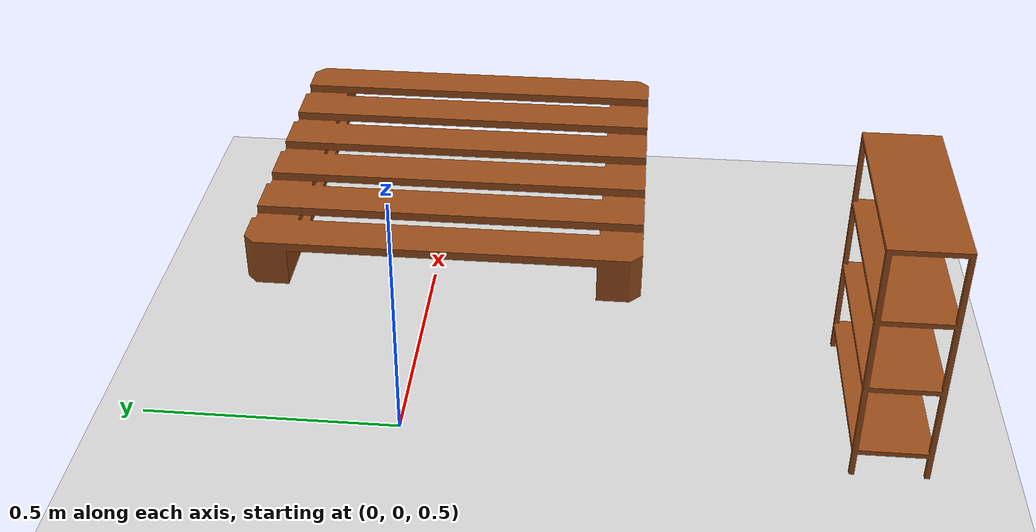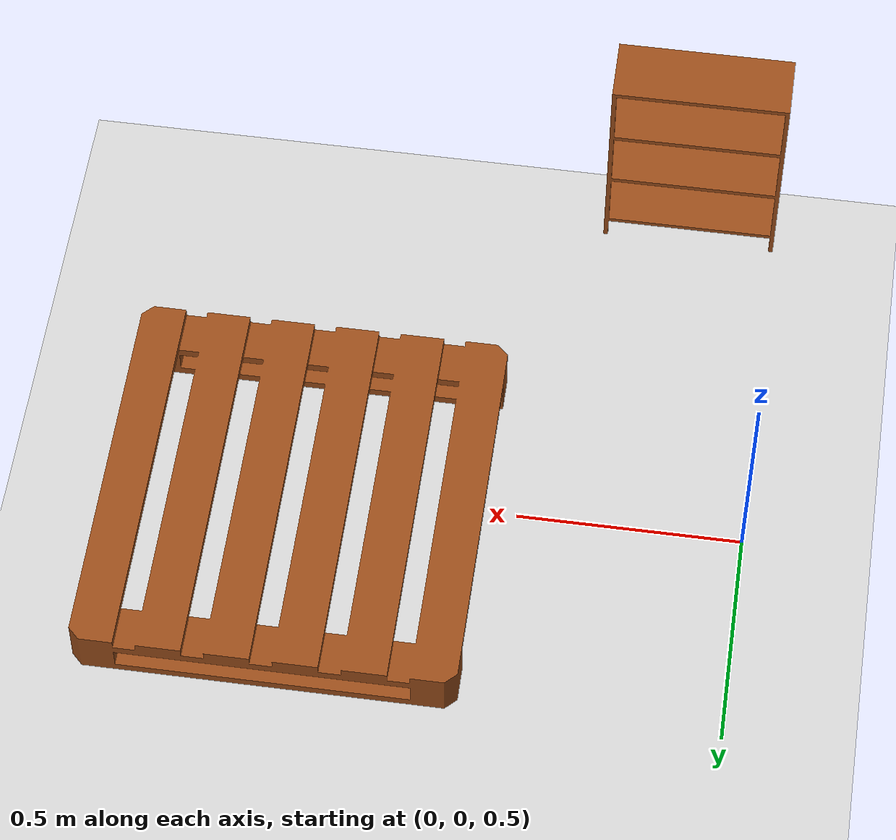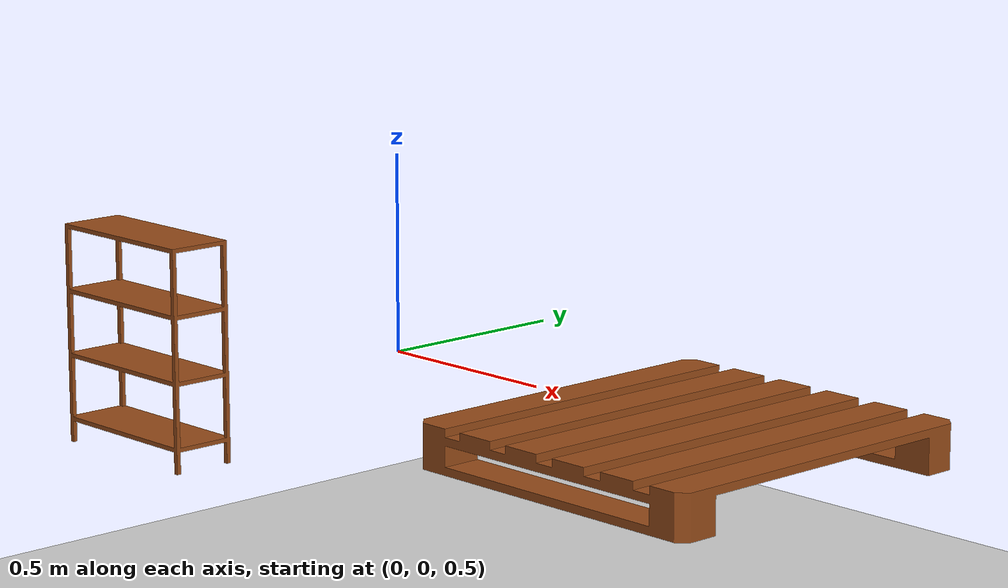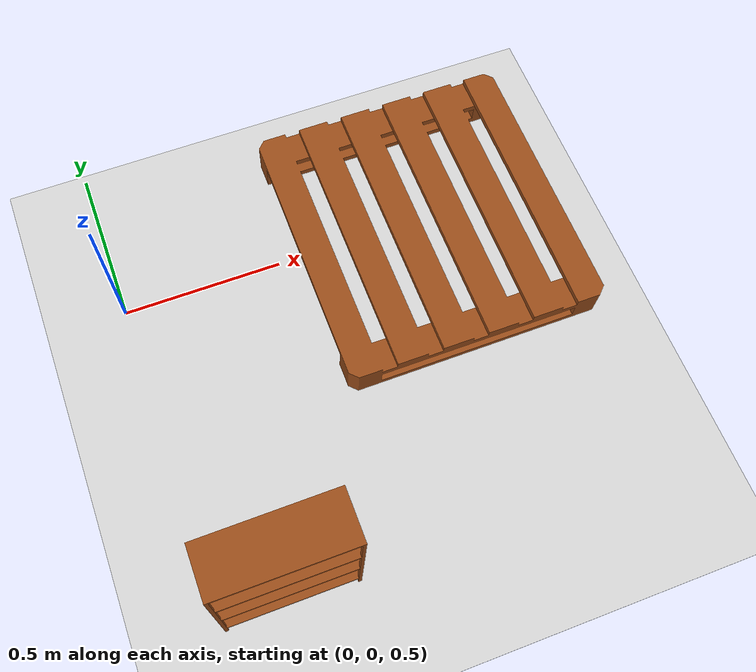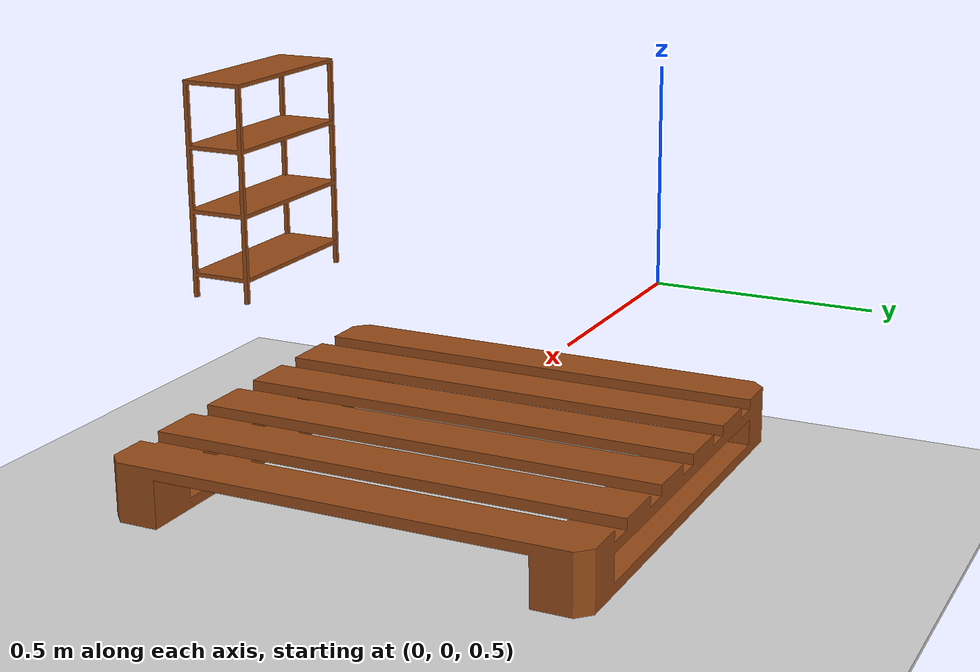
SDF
<?xml version="1.0" ?>
<sdf version="1.5">
  <world name="pallet_station_world">

    <physics name='default_physics' default='0' type='ode'>
      <gravity>0 0 -9.8066</gravity>
      <ode>
        <solver>
          <type>quick</type>
          <iters>10</iters>
          <sor>1.3</sor>
          <use_dynamic_moi_rescaling>0</use_dynamic_moi_rescaling>
        </solver>
        <constraints>
          <cfm>0</cfm>
          <erp>0.2</erp>
          <contact_max_correcting_vel>100</contact_max_correcting_vel>
          <contact_surface_layer>0.001</contact_surface_layer>
        </constraints>
      </ode>
      <max_step_size>0.004</max_step_size>
      <real_time_factor>1</real_time_factor>
      <real_time_update_rate>250</real_time_update_rate>
      <magnetic_field>6.0e-6 2.3e-5 -4.2e-5</magnetic_field>
    </physics>

    <light type="directional" name="sun">
      <cast_shadows>true</cast_shadows>
      <pose>0 0 10 0 0 0</pose>
      <diffuse>0.8 0.8 0.8 1</diffuse>
      <specular>0.2 0.2 0.2 1</specular>
      <attenuation>
        <range>1000</range>
        <constant>0.9</constant>
        <linear>0.01</linear>
        <quadratic>0.001</quadratic>
      </attenuation>
      <direction>-0.5 0.1 -0.9</direction>
    </light>

    <include>
      <name>race_field</name>
      <pose> 10 5 0.1 0 0 3.14159 </pose>
      <uri>model://race_field</uri>
    </include>

    <include>
      <name>pallet</name>
      <pose> 0 0 .5 0 0 0 </pose>
      <uri>model://pallet</uri>
    </include>

    <include>
      <name>rack</name>
      <pose> -1 -1 .5 0 0 0 </pose>
      <uri>model://rack</uri>
    </include>

  <plugin
    filename="gz-sim-physics-system"
    name="gz::sim::systems::Physics">
  </plugin>
  <plugin
    filename="gz-sim-user-commands-system"
    name="gz::sim::systems::UserCommands">
  </plugin>
    <plugin
    filename="gz-sim-scene-broadcaster-system"
    name="gz::sim::systems::SceneBroadcaster">
  </plugin>

  </world>
</sdf>

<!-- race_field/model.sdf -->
<sdf version="1.5">
  <model name="race_field">
    <static>true</static>
    <link name="link">
      <pose>0 1 0 0 0 0</pose>
      <collision name="collision">
        <geometry>
            <mesh>
              <uri>
                model://race_field/mesh/campo_gara.stl
              </uri>
              <scale>
                0.001 0.001 0.001
              </scale>
            </mesh>
        </geometry>
      </collision>
      <visual name="visual">
        <cast_shadows>true</cast_shadows>
        <geometry>
            <mesh>
              <uri>
                model://race_field/mesh/campo_gara.stl
              </uri>
              <scale>
                0.001 0.001 0.001
              </scale>
            </mesh>
        </geometry>
        <material>
          <ambient>0.8275 0.8275 0.8275 1</ambient>
          <diffuse>0.8275 0.8275 0.8275 1</diffuse>
        </material>
      </visual>
    </link>
  </model>
</sdf>

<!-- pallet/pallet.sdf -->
<sdf version="1.5">
  <model name="pallet">
    <static>false</static>

    <link name="link">
      <pose>1 0 0 0 0 0</pose>
      <collision name="collision">
        <geometry>
            <mesh>
              <uri>
                mesh/pallet.stl
              </uri>
              <scale>
                0.1 0.1 0.1
              </scale>
            </mesh>
        </geometry>
      </collision>

      <visual name="visual">
        <cast_shadows>true</cast_shadows>
        <geometry>
            <mesh>
              <uri>
                mesh/pallet.stl
              </uri>
              <scale>
                0.1 0.1 0.1
              </scale>
            </mesh>
        </geometry>
        <material>
          <ambient>0.6 0.3 0.1 1</ambient>
          <diffuse>0.6 0.3 0.1 1</diffuse>
        </material>
      </visual>
    </link>
  </model>
</sdf>

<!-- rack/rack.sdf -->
<sdf version="1.5">
  <model name="rack">
    <static>true</static>

    <link name="link">
      <pose>1 0 0 0 0 0</pose>
      <collision name="collision">
        <geometry>
            <mesh>
              <uri>
                mesh/rack.stl
              </uri>
              <scale>
                0.01 0.01 0.01
              </scale>
            </mesh>
        </geometry>
      </collision>

      <visual name="visual">
        <cast_shadows>true</cast_shadows>
        <geometry>
            <mesh>
              <uri>
                mesh/rack.stl
              </uri>
              <scale>
                0.01 0.01 0.01
              </scale>
            </mesh>
        </geometry>
        <material>
          <ambient>0.6 0.3 0.1 1</ambient>
          <diffuse>0.6 0.3 0.1 1</diffuse>
        </material>
      </visual>
    </link>
  </model>
</sdf>
